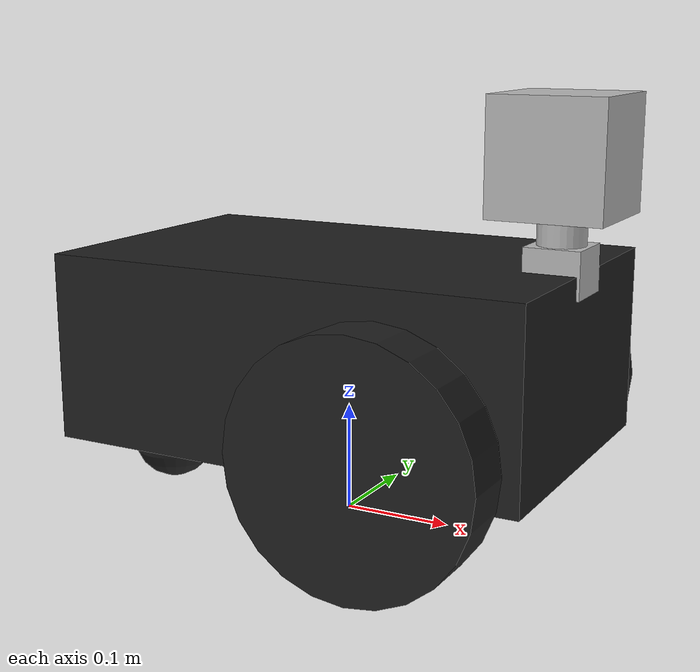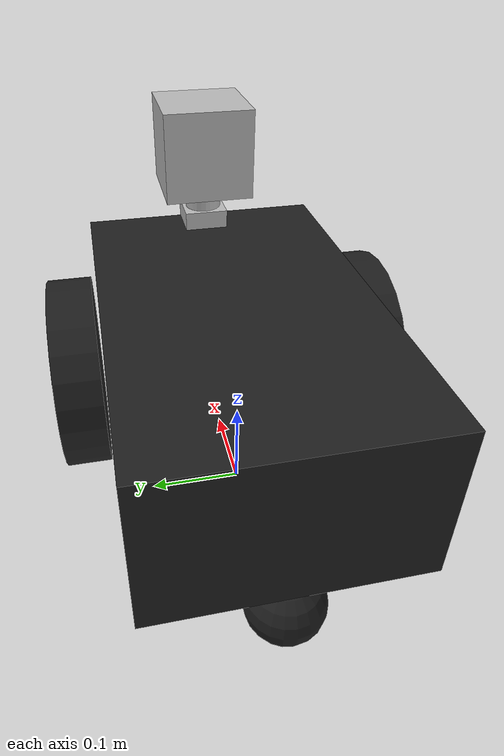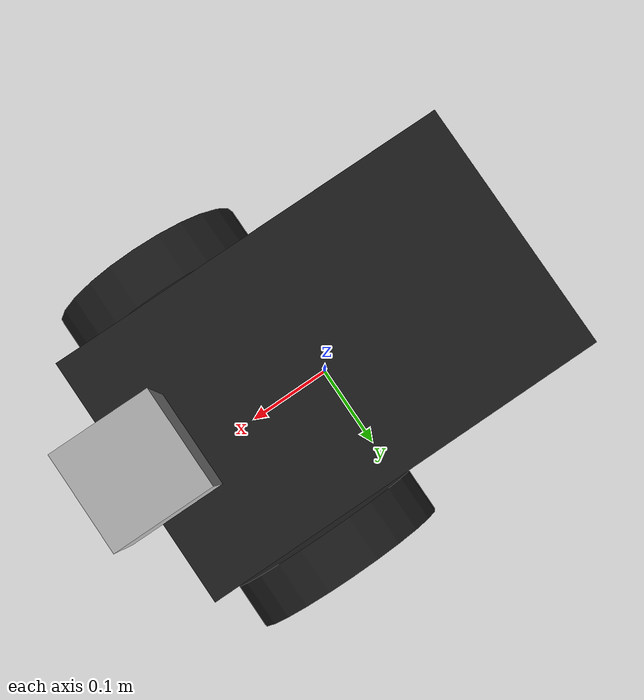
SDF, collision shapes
<?xml version="1.0" ?>
<sdf version="1.5">
    <model name="pioneer2dx">
      <include>
        <uri>model://pioneer2dx</uri>
      </include>

      <include>
        <uri>model://lidar</uri>
        <pose>0.2 0 .26 0 0 0</pose>
      </include>

      <include>
        <uri>model://custom_camera</uri>
        <pose>0.2 0 .34 0 0 0</pose>
        <!-- positioniere die Kamera weiter oben -->
      </include>

      <joint name="camera_joint" type="revolute">
        <parent>pioneer2dx::pioneer2dx::chassis</parent>
        <child>pioneer2dx::custom_camera::link</child>
        <axis>
          <xyz>0 0 1</xyz>
          <limit>
            <lower>0</lower>
            <upper>0</upper>
          </limit>
        </axis>
      </joint>

      <joint name="laser_joint" type="revolute">
        <parent>pioneer2dx::pioneer2dx::chassis</parent>
        <child>pioneer2dx::lidar::link</child>
        <axis>
          <xyz>0 0 1</xyz>
          <limit>
            <lower>0</lower>
            <upper>0</upper>
          </limit>
        </axis>
      </joint>

      <plugin name="ExtrinsicCalibrationPlugin" filename="libExtrinsicCalibrationPlugin.so">
        <filename>/home/sascha/gazebo_bachelor_wip/plugins/extrinsics.xml</filename>
      </plugin>

    </model>
</sdf>

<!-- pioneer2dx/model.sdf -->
<sdf version="1.5">
  <model name="pioneer2dx">
    <link name="chassis">
      <pose>0 0 0.16 0 0 0</pose>
      <inertial>
        <mass>5.67</mass>
        <inertia>
          <ixx>0.07</ixx>
          <iyy>0.08</iyy>
          <izz>0.10</izz>
          <ixy>0</ixy>
          <ixz>0</ixz>
          <iyz>0</iyz>
        </inertia>
      </inertial>
      <collision name="collision">
        <geometry>
          <box>
            <size>0.445 0.277 0.17</size>
          </box>
        </geometry>
      </collision>
      <collision name="castor_collision">
        <pose>-0.200 0 -0.12 0 0 0</pose>
        <geometry>
          <sphere>
            <radius>0.04</radius>
          </sphere>
        </geometry>
        <surface>
          <friction>
            <ode>
              <mu>0</mu>
              <mu2>0</mu2>
              <slip1>1.0</slip1>
              <slip2>1.0</slip2>
            </ode>
          </friction>
        </surface>
      </collision>
      <visual name="visual">
        <pose>0 0 0.04 0 0 0</pose>
        <geometry>
          <mesh>
            <uri>model://../model_source/models/pioneer2dx/meshes/chassis.dae</uri>
          </mesh>
        </geometry>
      </visual>
      <visual name="castor_visual">
        <pose>-0.200 0 -0.12 0 0 0</pose>
        <geometry>
          <sphere>
            <radius>0.04</radius>
          </sphere>
        </geometry>
        <material>
          <script>
            <uri>file://media/materials/scripts/gazebo.material</uri>
            <name>Gazebo/FlatBlack</name>
          </script>
        </material>
      </visual>
    </link>
    <link name="right_wheel">
      <pose>0.1 -.17 0.11 0 1.5707 1.5707</pose>
      <inertial>
        <mass>1.5</mass>
        <inertia>
          <ixx>0.0051</ixx>
          <iyy>0.0051</iyy>
          <izz>0.0090</izz>
          <ixy>0</ixy>
          <ixz>0</ixz>
          <iyz>0</iyz>
        </inertia>
      </inertial>
      <collision name="collision">
        <geometry>
          <cylinder>
            <radius>0.11</radius>
            <length>0.05</length>
          </cylinder>
        </geometry>
        <surface>
          <friction>
            <ode>
              <mu>100000.0</mu>
              <mu2>100000.0</mu2>
              <slip1>0.0</slip1>
              <slip2>0.0</slip2>
            </ode>
          </friction>
        </surface>
      </collision>
      <visual name="visual">
        <geometry>
          <cylinder>
            <radius>0.11</radius>
            <length>0.05</length>
          </cylinder>
        </geometry>
        <material>
          <script>
            <uri>file://media/materials/scripts/gazebo.material</uri>
            <name>Gazebo/FlatBlack</name>
          </script>
        </material>
      </visual>
    </link>
    <link name="left_wheel">
      <pose>0.1 .17 0.11 0 1.5707 1.5707</pose>
      <inertial>
        <mass>1.5</mass>
        <inertia>
          <ixx>0.0051</ixx>
          <iyy>0.0051</iyy>
          <izz>0.0090</izz>
          <ixy>0</ixy>
          <ixz>0</ixz>
          <iyz>0</iyz>
        </inertia>
      </inertial>
      <collision name="collision">
        <geometry>
          <cylinder>
            <radius>0.11</radius>
            <length>0.05</length>
          </cylinder>
        </geometry>
        <surface>
          <friction>
            <ode>
              <mu>100000.0</mu>
              <mu2>100000.0</mu2>
              <slip1>0.0</slip1>
              <slip2>0.0</slip2>
            </ode>
          </friction>
        </surface>
      </collision>
      <visual name="visual">
        <geometry>
          <cylinder>
            <radius>0.11</radius>
            <length>0.05</length>
          </cylinder>
        </geometry>
        <material>
          <script>
            <uri>file://media/materials/scripts/gazebo.material</uri>
            <name>Gazebo/FlatBlack</name>
          </script>
        </material>
      </visual>
    </link>
    <joint type="revolute" name="left_wheel_hinge">
      <pose>0 0 -0.03 0 0 0</pose>
      <child>left_wheel</child>
      <parent>chassis</parent>
      <axis>
        <xyz>0 1 0</xyz>
        <use_parent_model_frame>true</use_parent_model_frame>
      </axis>
    </joint>
    <joint type="revolute" name="right_wheel_hinge">
      <pose>0 0 0.03 0 0 0</pose>
      <child>right_wheel</child>
      <parent>chassis</parent>
      <axis>
        <xyz>0 1 0</xyz>
        <use_parent_model_frame>true</use_parent_model_frame>
      </axis>
    </joint>
    <plugin filename="libDiffDrivePlugin.so" name="diff_drive">
      <left_joint>left_wheel_hinge</left_joint>
      <right_joint>right_wheel_hinge</right_joint>
      <torque>5</torque>
    </plugin>
  </model>
</sdf>

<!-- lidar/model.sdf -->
<sdf version="1.5">
  <model name="lidar">
    <pose>0 0 0.035 0 0 0</pose>
    <link name="link">
      <inertial>
        <mass>0.1</mass>
      </inertial>
      <visual name="visual">
        <geometry>
          <mesh>
            <uri>model://hokuyo/meshes/hokuyo.dae</uri>
          </mesh>
        </geometry>
      </visual>
      <collision name="collision-base">
        <pose>0 0 -0.0145 0 0 0</pose>
        <geometry>
          <box>
            <size>0.05 0.05 0.041</size>
          </box>
        </geometry>
      </collision>
      <collision name="collision-top">
        <pose>0 0 0.0205 0 0 0</pose>
        <geometry>
          <cylinder>
            <radius>0.021</radius>
            <length>0.029</length>
          </cylinder>
        </geometry>
      </collision>
      <sensor name="laser" type="ray">
        <pose>0.01 0 0.0175 0 -0 0</pose>
        <ray>
          <scan>
            <horizontal>
              <samples>640</samples>
              <resolution>1</resolution>
              <min_angle>-2.26889</min_angle>
              <max_angle>2.268899</max_angle>
            </horizontal>
          </scan>
          <range>
            <min>0.08</min>
            <max>10</max>
            <resolution>0.01</resolution>
          </range>
          <noise>
            <type>gaussian</type>
            <mean>0.0</mean>
            <stddev>0.05</stddev>
          </noise>
        </ray>
        <plugin name="laser" filename="libRayPlugin.so" />
        <always_on>1</always_on>
        <update_rate>30</update_rate>
        <visualize>true</visualize>
      </sensor>
    </link>
  </model>
</sdf>

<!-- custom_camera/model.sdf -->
<sdf version="1.5">
  <model name="custom_camera">
    <pose>0 0 0.05 0 0 0</pose>
    <link name="link">
      <inertial>
        <mass>0.1</mass>
        <inertia>
          <ixx>0.000166667</ixx>
          <iyy>0.000166667</iyy>
          <izz>0.000166667</izz>
        </inertia>
      </inertial>
      <collision name="collision">
        <geometry>
          <box>
            <size>0.1 0.1 0.1</size>
          </box>
        </geometry>
      </collision>
      <visual name="visual">
        <geometry>
          <box>
            <size>0.1 0.1 0.1</size>
          </box>
        </geometry>
      </visual>
      <sensor name="camera" type="camera">
        <camera>
          <horizontal_fov>1.047</horizontal_fov>
          <image>
            <width>1920</width>
            <height>1080</height>
          </image>
          <clip>
            <near>0.1</near>
            <far>100</far>
          </clip>
          <noise>
            <type>gaussian</type>
            <mean>0.0</mean>
            <stddev>0.025</stddev>
          </noise>
        </camera>
        <always_on>1</always_on>
        <update_rate>30</update_rate>
        <visualize>true</visualize>
        <plugin name="ProjectionMatrixPlugin" filename="libProjectionMatrixPlugin.so">
          <filename>/home/sascha/gazebo_bachelor_wip/plugins/K.xml</filename>
        </plugin>
      </sensor>
    </link>
  </model>
</sdf>
